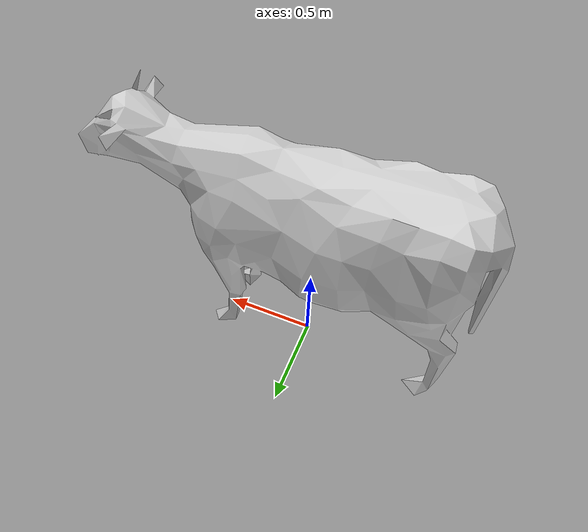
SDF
<?xml version="1.0"?>
<sdf version="1.4">
  <model name="cow_tdf">
    <static>true</static>
    <link name="body">
     <inertial>
        <mass>200</mass>
        <inertia>
          <ixx>0.167005283</ixx>
          <ixy>0</ixy>
          <ixz>0</ixz>
          <iyy>0.167005283</iyy>
          <iyz>0</iyz>
          <izz>0.282065474</izz>
        </inertia>
      </inertial>
      <collision name="collision">
        <geometry>
          <mesh>
            <uri>model://cow_tdf/meshes/cow.dae</uri>
          </mesh>
        </geometry>
      </collision>
      <visual name="visual">
        <geometry>
          <mesh><uri>model://cow_tdf/meshes/cow.dae</uri></mesh>
        </geometry>
      </visual>
    </link>
  </model>
</sdf>
